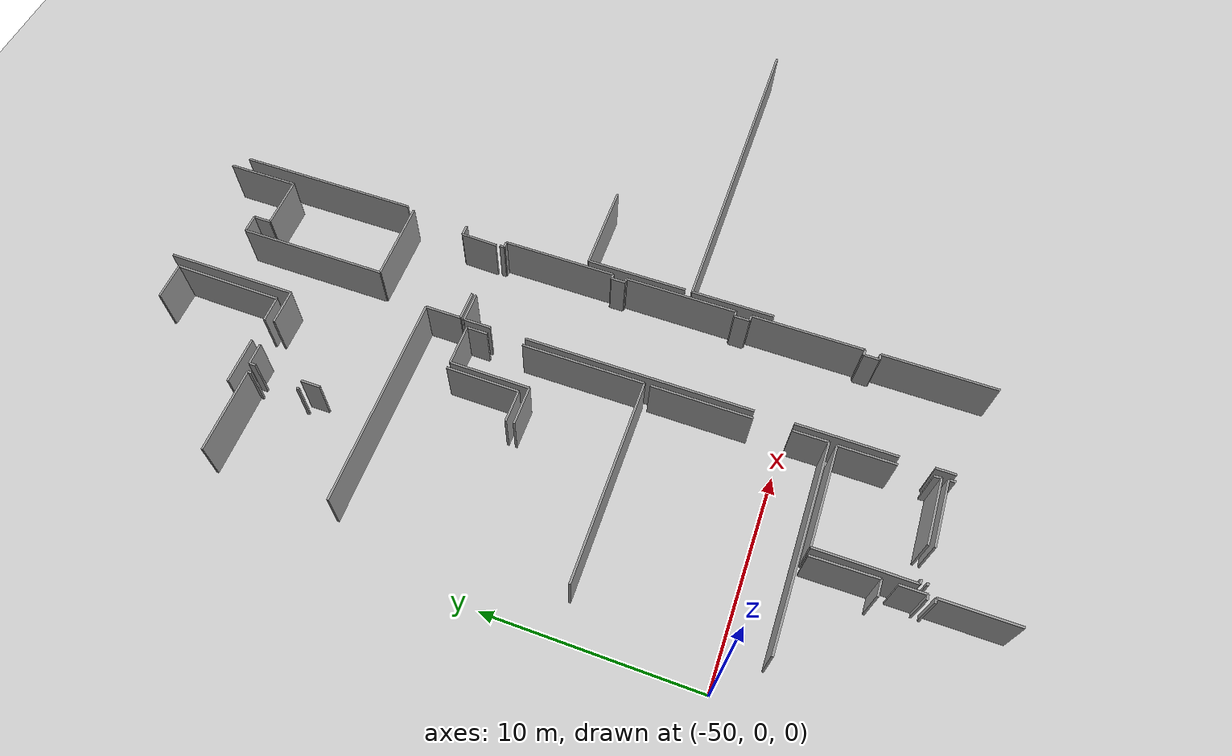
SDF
<sdf version="1.6">
 <world name="default">
  <model name="ground_plane">
   <static>1</static>
   <link name="link">
    <collision name="collision">
     <geometry><plane><normal>0 0 1</normal><size>100 100</size></plane></geometry>
     <surface><friction><ode><mu>100</mu><mu2>50</mu2></ode></friction></surface>
    </collision>
    <visual name="visual">
     <cast_shadows>0</cast_shadows>
     <geometry><plane><normal>0 0 1</normal><size>100 100</size></plane></geometry>
     <material>
      <script><uri>file://media/materials/scripts/gazebo.material</uri><name>Gazebo/Grey</name></script>
     </material>
    </visual>
   </link>
  </model>
  <model name="50010535_PLAN2">
   <static>1</static>
   <link name="Wall_122">
    <collision name="Wall_122_Collision">
     <geometry><box><size>1.39489082165 0.1 2.5</size></box></geometry>
     <pose>0.697445410824 0 1.25 0 0 0</pose>
    </collision>
    <visual name="Wall_122_Visual">
     <pose>0.697445410824 0 1.25 0 0 0</pose>
     <geometry><box><size>1.39489082165 0.1 2.5</size></box></geometry>
     <material>
      <script><uri>file://media/materials/scripts/gazebo.material</uri><name>Gazebo/Grey</name></script>
      <ambient>1 1 1 1</ambient>
     </material>
    </visual>
    <pose>65.727870498 -14.2251164209 0 0 0 3.14159265359</pose>
   </link>
   <link name="Wall_123">
    <collision name="Wall_123_Collision">
     <geometry><box><size>1.72881075964 0.1 2.5</size></box></geometry>
     <pose>0.864405379821 0 1.25 0 0 0</pose>
    </collision>
    <visual name="Wall_123_Visual">
     <pose>0.864405379821 0 1.25 0 0 0</pose>
     <geometry><box><size>1.72881075964 0.1 2.5</size></box></geometry>
     <material>
      <script><uri>file://media/materials/scripts/gazebo.material</uri><name>Gazebo/Grey</name></script>
      <ambient>1 1 1 1</ambient>
     </material>
    </visual>
    <pose>64.3329796764 -14.2251164209 0 0 0 1.57079632679</pose>
   </link>
   <link name="Wall_124">
    <collision name="Wall_124_Collision">
     <geometry><box><size>10.1380532773 0.1 2.5</size></box></geometry>
     <pose>5.06902663863 0 1.25 0 0 0</pose>
    </collision>
    <visual name="Wall_124_Visual">
     <pose>5.06902663863 0 1.25 0 0 0</pose>
     <geometry><box><size>10.1380532773 0.1 2.5</size></box></geometry>
     <material>
      <script><uri>file://media/materials/scripts/gazebo.material</uri><name>Gazebo/Grey</name></script>
      <ambient>1 1 1 1</ambient>
     </material>
    </visual>
    <pose>64.3329796764 -12.4963056613 0 0 0 3.14159265359</pose>
   </link>
   <link name="Wall_126">
    <collision name="Wall_126_Collision">
     <geometry><box><size>0.931875504279 0.1 2.5</size></box></geometry>
     <pose>0.465937752139 0 1.25 0 0 0</pose>
    </collision>
    <visual name="Wall_126_Visual">
     <pose>0.465937752139 0 1.25 0 0 0</pose>
     <geometry><box><size>0.931875504279 0.1 2.5</size></box></geometry>
     <material>
      <script><uri>file://media/materials/scripts/gazebo.material</uri><name>Gazebo/Grey</name></script>
      <ambient>1 1 1 1</ambient>
     </material>
    </visual>
    <pose>58.8893731377 -9.77996607434 0 0 0 1.57079632679</pose>
   </link>
   <link name="Wall_127">
    <collision name="Wall_127_Collision">
     <geometry><box><size>0.319663538814 0.1 2.5</size></box></geometry>
     <pose>0.159831769407 0 1.25 0 0 0</pose>
    </collision>
    <visual name="Wall_127_Visual">
     <pose>0.159831769407 0 1.25 0 0 0</pose>
     <geometry><box><size>0.319663538814 0.1 2.5</size></box></geometry>
     <material>
      <script><uri>file://media/materials/scripts/gazebo.material</uri><name>Gazebo/Grey</name></script>
      <ambient>1 1 1 1</ambient>
     </material>
    </visual>
    <pose>58.8893731377 -6.58261913687 0 0 0 1.57079632679</pose>
   </link>
   <link name="Wall_128">
    <collision name="Wall_128_Collision">
     <geometry><box><size>1.02640991595 0.1 2.5</size></box></geometry>
     <pose>0.513204957974 0 1.25 0 0 0</pose>
    </collision>
    <visual name="Wall_128_Visual">
     <pose>0.513204957974 0 1.25 0 0 0</pose>
     <geometry><box><size>1.02640991595 0.1 2.5</size></box></geometry>
     <material>
      <script><uri>file://media/materials/scripts/gazebo.material</uri><name>Gazebo/Grey</name></script>
      <ambient>1 1 1 1</ambient>
     </material>
    </visual>
    <pose>58.8893731377 -6.26295559805 0 0 0 0.0</pose>
   </link>
   <link name="Wall_129">
    <collision name="Wall_129_Collision">
     <geometry><box><size>1.68738842335 0.1 2.5</size></box></geometry>
     <pose>0.843694211673 0 1.25 0 0 0</pose>
    </collision>
    <visual name="Wall_129_Visual">
     <pose>0.843694211673 0 1.25 0 0 0</pose>
     <geometry><box><size>1.68738842335 0.1 2.5</size></box></geometry>
     <material>
      <script><uri>file://media/materials/scripts/gazebo.material</uri><name>Gazebo/Grey</name></script>
      <ambient>1 1 1 1</ambient>
     </material>
    </visual>
    <pose>61.2069909722 -6.26295559805 0 0 0 0.0</pose>
   </link>
   <link name="Wall_130">
    <collision name="Wall_130_Collision">
     <geometry><box><size>6.26295559805 0.1 2.5</size></box></geometry>
     <pose>3.13147779903 0 1.25 0 0 0</pose>
    </collision>
    <visual name="Wall_130_Visual">
     <pose>3.13147779903 0 1.25 0 0 0</pose>
     <geometry><box><size>6.26295559805 0.1 2.5</size></box></geometry>
     <material>
      <script><uri>file://media/materials/scripts/gazebo.material</uri><name>Gazebo/Grey</name></script>
      <ambient>1 1 1 1</ambient>
     </material>
    </visual>
    <pose>62.8943793956 -6.26295559805 0 0 0 1.57079632679</pose>
   </link>
   <link name="Wall_131">
    <collision name="Wall_131_Collision">
     <geometry><box><size>3.40252727076 0.1 2.5</size></box></geometry>
     <pose>1.70126363538 0 1.25 0 0 0</pose>
    </collision>
    <visual name="Wall_131_Visual">
     <pose>1.70126363538 0 1.25 0 0 0</pose>
     <geometry><box><size>3.40252727076 0.1 2.5</size></box></geometry>
     <material>
      <script><uri>file://media/materials/scripts/gazebo.material</uri><name>Gazebo/Grey</name></script>
      <ambient>1 1 1 1</ambient>
     </material>
    </visual>
    <pose>68.6894404808 -0.0 0 0 0 -1.57079632679</pose>
   </link>
   <link name="Wall_132">
    <collision name="Wall_132_Collision">
     <geometry><box><size>2.46983856724 0.1 2.5</size></box></geometry>
     <pose>1.23491928362 0 1.25 0 0 0</pose>
    </collision>
    <visual name="Wall_132_Visual">
     <pose>1.23491928362 0 1.25 0 0 0</pose>
     <geometry><box><size>2.46983856724 0.1 2.5</size></box></geometry>
     <material>
      <script><uri>file://media/materials/scripts/gazebo.material</uri><name>Gazebo/Grey</name></script>
      <ambient>1 1 1 1</ambient>
     </material>
    </visual>
    <pose>68.6894404808 -3.40252727076 0 0 0 3.14159265359</pose>
   </link>
   <link name="Wall_133">
    <collision name="Wall_133_Collision">
     <geometry><box><size>0.848980006734 0.1 2.5</size></box></geometry>
     <pose>0.424490003367 0 1.25 0 0 0</pose>
    </collision>
    <visual name="Wall_133_Visual">
     <pose>0.424490003367 0 1.25 0 0 0</pose>
     <geometry><box><size>0.848980006734 0.1 2.5</size></box></geometry>
     <material>
      <script><uri>file://media/materials/scripts/gazebo.material</uri><name>Gazebo/Grey</name></script>
      <ambient>1 1 1 1</ambient>
     </material>
    </visual>
    <pose>66.2196019136 -3.40252727076 0 0 0 1.57079632679</pose>
   </link>
   <link name="Wall_134">
    <collision name="Wall_134_Collision">
     <geometry><box><size>0.868852563166 0.1 2.5</size></box></geometry>
     <pose>0.434426281583 0 1.25 0 0 0</pose>
    </collision>
    <visual name="Wall_134_Visual">
     <pose>0.434426281583 0 1.25 0 0 0</pose>
     <geometry><box><size>0.868852563166 0.1 2.5</size></box></geometry>
     <material>
      <script><uri>file://media/materials/scripts/gazebo.material</uri><name>Gazebo/Grey</name></script>
      <ambient>1 1 1 1</ambient>
     </material>
    </visual>
    <pose>66.2196019136 -2.55354726403 0 0 0 3.14159265359</pose>
   </link>
   <link name="Wall_135">
    <collision name="Wall_135_Collision">
     <geometry><box><size>7.12654777863 0.1 2.5</size></box></geometry>
     <pose>3.56327388932 0 1.25 0 0 0</pose>
    </collision>
    <visual name="Wall_135_Visual">
     <pose>3.56327388932 0 1.25 0 0 0</pose>
     <geometry><box><size>7.12654777863 0.1 2.5</size></box></geometry>
     <material>
      <script><uri>file://media/materials/scripts/gazebo.material</uri><name>Gazebo/Grey</name></script>
      <ambient>1 1 1 1</ambient>
     </material>
    </visual>
    <pose>65.3507493504 -2.55354726403 0 0 0 -1.57079632679</pose>
   </link>
   <link name="Wall_136">
    <collision name="Wall_136_Collision">
     <geometry><box><size>3.87057425843 0.1 2.5</size></box></geometry>
     <pose>1.93528712922 0 1.25 0 0 0</pose>
    </collision>
    <visual name="Wall_136_Visual">
     <pose>1.93528712922 0 1.25 0 0 0</pose>
     <geometry><box><size>3.87057425843 0.1 2.5</size></box></geometry>
     <material>
      <script><uri>file://media/materials/scripts/gazebo.material</uri><name>Gazebo/Grey</name></script>
      <ambient>1 1 1 1</ambient>
     </material>
    </visual>
    <pose>65.3507493504 -9.68009504266 0 0 0 0.0</pose>
   </link>
   <link name="Wall_137">
    <collision name="Wall_137_Collision">
     <geometry><box><size>0.500371657465 0.1 2.5</size></box></geometry>
     <pose>0.250185828733 0 1.25 0 0 0</pose>
    </collision>
    <visual name="Wall_137_Visual">
     <pose>0.250185828733 0 1.25 0 0 0</pose>
     <geometry><box><size>0.500371657465 0.1 2.5</size></box></geometry>
     <material>
      <script><uri>file://media/materials/scripts/gazebo.material</uri><name>Gazebo/Grey</name></script>
      <ambient>1 1 1 1</ambient>
     </material>
    </visual>
    <pose>69.2213236088 -12.481566425 0 0 0 3.14159265359</pose>
   </link>
   <link name="Wall_138">
    <collision name="Wall_138_Collision">
     <geometry><box><size>1.7440977911 0.1 2.5</size></box></geometry>
     <pose>0.87204889555 0 1.25 0 0 0</pose>
    </collision>
    <visual name="Wall_138_Visual">
     <pose>0.87204889555 0 1.25 0 0 0</pose>
     <geometry><box><size>1.7440977911 0.1 2.5</size></box></geometry>
     <material>
      <script><uri>file://media/materials/scripts/gazebo.material</uri><name>Gazebo/Grey</name></script>
      <ambient>1 1 1 1</ambient>
     </material>
    </visual>
    <pose>68.7209519514 -12.481566425 0 0 0 -1.59586030894</pose>
   </link>
   <link name="Wall_139">
    <collision name="Wall_139_Collision">
     <geometry><box><size>0.126300006988 0.1 2.5</size></box></geometry>
     <pose>0.0631500034942 0 1.25 0 0 0</pose>
    </collision>
    <visual name="Wall_139_Visual">
     <pose>0.0631500034942 0 1.25 0 0 0</pose>
     <geometry><box><size>0.126300006988 0.1 2.5</size></box></geometry>
     <material>
      <script><uri>file://media/materials/scripts/gazebo.material</uri><name>Gazebo/Grey</name></script>
      <ambient>1 1 1 1</ambient>
     </material>
    </visual>
    <pose>58.4850606405 -8.96168433893 0 0 0 1.57079632679</pose>
   </link>
   <link name="Wall_140">
    <collision name="Wall_140_Collision">
     <geometry><box><size>0.188890936005 0.1 2.5</size></box></geometry>
     <pose>0.0944454680025 0 1.25 0 0 0</pose>
    </collision>
    <visual name="Wall_140_Visual">
     <pose>0.0944454680025 0 1.25 0 0 0</pose>
     <geometry><box><size>0.188890936005 0.1 2.5</size></box></geometry>
     <material>
      <script><uri>file://media/materials/scripts/gazebo.material</uri><name>Gazebo/Grey</name></script>
      <ambient>1 1 1 1</ambient>
     </material>
    </visual>
    <pose>58.4850606405 -6.59715507328 0 0 0 1.57079632679</pose>
   </link>
   <link name="Wall_141">
    <collision name="Wall_141_Collision">
     <geometry><box><size>4.04515797031 0.1 2.5</size></box></geometry>
     <pose>2.02257898515 0 1.25 0 0 0</pose>
    </collision>
    <visual name="Wall_141_Visual">
     <pose>2.02257898515 0 1.25 0 0 0</pose>
     <geometry><box><size>4.04515797031 0.1 2.5</size></box></geometry>
     <material>
      <script><uri>file://media/materials/scripts/gazebo.material</uri><name>Gazebo/Grey</name></script>
      <ambient>1 1 1 1</ambient>
     </material>
    </visual>
    <pose>58.4850606405 -6.40826413728 0 0 0 3.14159265359</pose>
   </link>
   <link name="Wall_144">
    <collision name="Wall_144_Collision">
     <geometry><box><size>1.22996385075 0.1 2.5</size></box></geometry>
     <pose>0.614981925376 0 1.25 0 0 0</pose>
    </collision>
    <visual name="Wall_144_Visual">
     <pose>0.614981925376 0 1.25 0 0 0</pose>
     <geometry><box><size>1.22996385075 0.1 2.5</size></box></geometry>
     <material>
      <script><uri>file://media/materials/scripts/gazebo.material</uri><name>Gazebo/Grey</name></script>
      <ambient>1 1 1 1</ambient>
     </material>
    </visual>
    <pose>62.3807932504 -5.79844094458 0 0 0 3.14159265359</pose>
   </link>
   <link name="Wall_145">
    <collision name="Wall_145_Collision">
     <geometry><box><size>2.22232104852 0.1 2.5</size></box></geometry>
     <pose>1.11116052426 0 1.25 0 0 0</pose>
    </collision>
    <visual name="Wall_145_Visual">
     <pose>1.11116052426 0 1.25 0 0 0</pose>
     <geometry><box><size>2.22232104852 0.1 2.5</size></box></geometry>
     <material>
      <script><uri>file://media/materials/scripts/gazebo.material</uri><name>Gazebo/Grey</name></script>
      <ambient>1 1 1 1</ambient>
     </material>
    </visual>
    <pose>59.987192112 -5.79844094458 0 0 0 3.14159265359</pose>
   </link>
   <link name="Wall_150">
    <collision name="Wall_150_Collision">
     <geometry><box><size>1.78141458549 0.1 2.5</size></box></geometry>
     <pose>0.890707292745 0 1.25 0 0 0</pose>
    </collision>
    <visual name="Wall_150_Visual">
     <pose>0.890707292745 0 1.25 0 0 0</pose>
     <geometry><box><size>1.78141458549 0.1 2.5</size></box></geometry>
     <material>
      <script><uri>file://media/materials/scripts/gazebo.material</uri><name>Gazebo/Grey</name></script>
      <ambient>1 1 1 1</ambient>
     </material>
    </visual>
    <pose>60.6456293717 -0.610306029745 0 0 0 0.0</pose>
   </link>
   <link name="Wall_151">
    <collision name="Wall_151_Collision">
     <geometry><box><size>5.18834106651 0.1 2.5</size></box></geometry>
     <pose>2.59417053325 0 1.25 0 0 0</pose>
    </collision>
    <visual name="Wall_151_Visual">
     <pose>2.59417053325 0 1.25 0 0 0</pose>
     <geometry><box><size>5.18834106651 0.1 2.5</size></box></geometry>
     <material>
      <script><uri>file://media/materials/scripts/gazebo.material</uri><name>Gazebo/Grey</name></script>
      <ambient>1 1 1 1</ambient>
     </material>
    </visual>
    <pose>62.4270439572 -0.610306029745 0 0 0 -1.57971079845</pose>
   </link>
   <link name="Wall_197">
    <collision name="Wall_197_Collision">
     <geometry><box><size>8.73304829006 0.1 2.5</size></box></geometry>
     <pose>4.36652414503 0 1.25 0 0 0</pose>
    </collision>
    <visual name="Wall_197_Visual">
     <pose>4.36652414503 0 1.25 0 0 0</pose>
     <geometry><box><size>8.73304829006 0.1 2.5</size></box></geometry>
     <material>
      <script><uri>file://media/materials/scripts/gazebo.material</uri><name>Gazebo/Grey</name></script>
      <ambient>1 1 1 1</ambient>
     </material>
    </visual>
    <pose>69.3481318653 -9.31491775887 0 0 0 1.57079632679</pose>
   </link>
   <link name="Wall_300">
    <collision name="Wall_300_Collision">
     <geometry><box><size>4.77068416739 0.1 2.5</size></box></geometry>
     <pose>2.3853420837 0 1.25 0 0 0</pose>
    </collision>
    <visual name="Wall_300_Visual">
     <pose>2.3853420837 0 1.25 0 0 0</pose>
     <geometry><box><size>4.77068416739 0.1 2.5</size></box></geometry>
     <material>
      <script><uri>file://media/materials/scripts/gazebo.material</uri><name>Gazebo/Grey</name></script>
      <ambient>1 1 1 1</ambient>
     </material>
    </visual>
    <pose>69.3311055062 -23.4805943978 0 0 0 1.57079632679</pose>
   </link>
   <link name="Wall_301">
    <collision name="Wall_301_Collision">
     <geometry><box><size>4.24718715653 0.1 2.5</size></box></geometry>
     <pose>2.12359357827 0 1.25 0 0 0</pose>
    </collision>
    <visual name="Wall_301_Visual">
     <pose>2.12359357827 0 1.25 0 0 0</pose>
     <geometry><box><size>4.24718715653 0.1 2.5</size></box></geometry>
     <material>
      <script><uri>file://media/materials/scripts/gazebo.material</uri><name>Gazebo/Grey</name></script>
      <ambient>1 1 1 1</ambient>
     </material>
    </visual>
    <pose>69.3311055062 -18.7099102304 0 0 0 0.0</pose>
   </link>
   <link name="Wall_307">
    <collision name="Wall_307_Collision">
     <geometry><box><size>3.93105595192 0.1 2.5</size></box></geometry>
     <pose>1.96552797596 0 1.25 0 0 0</pose>
    </collision>
    <visual name="Wall_307_Visual">
     <pose>1.96552797596 0 1.25 0 0 0</pose>
     <geometry><box><size>3.93105595192 0.1 2.5</size></box></geometry>
     <material>
      <script><uri>file://media/materials/scripts/gazebo.material</uri><name>Gazebo/Grey</name></script>
      <ambient>1 1 1 1</ambient>
     </material>
    </visual>
    <pose>69.3255147615 -27.7509069077 0 0 0 1.57079632679</pose>
   </link>
   <link name="Wall_308">
    <collision name="Wall_308_Collision">
     <geometry><box><size>15.8436624461 0.1 2.5</size></box></geometry>
     <pose>7.92183122304 0 1.25 0 0 0</pose>
    </collision>
    <visual name="Wall_308_Visual">
     <pose>7.92183122304 0 1.25 0 0 0</pose>
     <geometry><box><size>15.8436624461 0.1 2.5</size></box></geometry>
     <material>
      <script><uri>file://media/materials/scripts/gazebo.material</uri><name>Gazebo/Grey</name></script>
      <ambient>1 1 1 1</ambient>
     </material>
    </visual>
    <pose>69.3255147615 -23.8198509558 0 0 0 0.0</pose>
   </link>
   <link name="Wall_743">
    <collision name="Wall_743_Collision">
     <geometry><box><size>0.915357394713 0.1 2.5</size></box></geometry>
     <pose>0.457678697356 0 1.25 0 0 0</pose>
    </collision>
    <visual name="Wall_743_Visual">
     <pose>0.457678697356 0 1.25 0 0 0</pose>
     <geometry><box><size>0.915357394713 0.1 2.5</size></box></geometry>
     <material>
      <script><uri>file://media/materials/scripts/gazebo.material</uri><name>Gazebo/Grey</name></script>
      <ambient>1 1 1 1</ambient>
     </material>
    </visual>
    <pose>64.309854323 -36.9786852855 0 0 0 1.57079632679</pose>
   </link>
   <link name="Wall_744">
    <collision name="Wall_744_Collision">
     <geometry><box><size>4.59508395647 0.1 2.5</size></box></geometry>
     <pose>2.29754197823 0 1.25 0 0 0</pose>
    </collision>
    <visual name="Wall_744_Visual">
     <pose>2.29754197823 0 1.25 0 0 0</pose>
     <geometry><box><size>4.59508395647 0.1 2.5</size></box></geometry>
     <material>
      <script><uri>file://media/materials/scripts/gazebo.material</uri><name>Gazebo/Grey</name></script>
      <ambient>1 1 1 1</ambient>
     </material>
    </visual>
    <pose>64.309854323 -34.5347674441 0 0 0 1.57079632679</pose>
   </link>
   <link name="Wall_745">
    <collision name="Wall_745_Collision">
     <geometry><box><size>10.730163974 0.1 2.5</size></box></geometry>
     <pose>5.365081987 0 1.25 0 0 0</pose>
    </collision>
    <visual name="Wall_745_Visual">
     <pose>5.365081987 0 1.25 0 0 0</pose>
     <geometry><box><size>10.730163974 0.1 2.5</size></box></geometry>
     <material>
      <script><uri>file://media/materials/scripts/gazebo.material</uri><name>Gazebo/Grey</name></script>
      <ambient>1 1 1 1</ambient>
     </material>
    </visual>
    <pose>64.309854323 -28.1519157831 0 0 0 1.57079632679</pose>
   </link>
   <link name="Wall_746">
    <collision name="Wall_746_Collision">
     <geometry><box><size>1.29298679187 0.1 2.5</size></box></geometry>
     <pose>0.646493395933 0 1.25 0 0 0</pose>
    </collision>
    <visual name="Wall_746_Visual">
     <pose>0.646493395933 0 1.25 0 0 0</pose>
     <geometry><box><size>1.29298679187 0.1 2.5</size></box></geometry>
     <material>
      <script><uri>file://media/materials/scripts/gazebo.material</uri><name>Gazebo/Grey</name></script>
      <ambient>1 1 1 1</ambient>
     </material>
    </visual>
    <pose>64.309854323 -15.7071720361 0 0 0 1.57079632679</pose>
   </link>
   <link name="Wall_747">
    <collision name="Wall_747_Collision">
     <geometry><box><size>1.40327693881 0.1 2.5</size></box></geometry>
     <pose>0.701638469407 0 1.25 0 0 0</pose>
    </collision>
    <visual name="Wall_747_Visual">
     <pose>0.701638469407 0 1.25 0 0 0</pose>
     <geometry><box><size>1.40327693881 0.1 2.5</size></box></geometry>
     <material>
      <script><uri>file://media/materials/scripts/gazebo.material</uri><name>Gazebo/Grey</name></script>
      <ambient>1 1 1 1</ambient>
     </material>
    </visual>
    <pose>64.309854323 -14.4141852442 0 0 0 0.0</pose>
   </link>
   <link name="Wall_748">
    <collision name="Wall_748_Collision">
     <geometry><box><size>0.227187537722 0.1 2.5</size></box></geometry>
     <pose>0.113593768861 0 1.25 0 0 0</pose>
    </collision>
    <visual name="Wall_748_Visual">
     <pose>0.113593768861 0 1.25 0 0 0</pose>
     <geometry><box><size>0.227187537722 0.1 2.5</size></box></geometry>
     <material>
      <script><uri>file://media/materials/scripts/gazebo.material</uri><name>Gazebo/Grey</name></script>
      <ambient>1 1 1 1</ambient>
     </material>
    </visual>
    <pose>68.7074833389 -14.4141852442 0 0 0 -1.57079632679</pose>
   </link>
   <link name="Wall_749">
    <collision name="Wall_749_Collision">
     <geometry><box><size>0.287160981684 0.1 2.5</size></box></geometry>
     <pose>0.143580490842 0 1.25 0 0 0</pose>
    </collision>
    <visual name="Wall_749_Visual">
     <pose>0.143580490842 0 1.25 0 0 0</pose>
     <geometry><box><size>0.287160981684 0.1 2.5</size></box></geometry>
     <material>
      <script><uri>file://media/materials/scripts/gazebo.material</uri><name>Gazebo/Grey</name></script>
      <ambient>1 1 1 1</ambient>
     </material>
    </visual>
    <pose>68.7074833389 -14.641372782 0 0 0 0.0</pose>
   </link>
   <link name="Wall_750">
    <collision name="Wall_750_Collision">
     <geometry><box><size>5.4065043233 0.1 2.5</size></box></geometry>
     <pose>2.70325216165 0 1.25 0 0 0</pose>
    </collision>
    <visual name="Wall_750_Visual">
     <pose>2.70325216165 0 1.25 0 0 0</pose>
     <geometry><box><size>5.4065043233 0.1 2.5</size></box></geometry>
     <material>
      <script><uri>file://media/materials/scripts/gazebo.material</uri><name>Gazebo/Grey</name></script>
      <ambient>1 1 1 1</ambient>
     </material>
    </visual>
    <pose>68.9946443206 -14.641372782 0 0 0 -1.57079632679</pose>
   </link>
   <link name="Wall_751">
    <collision name="Wall_751_Collision">
     <geometry><box><size>0.235319530123 0.1 2.5</size></box></geometry>
     <pose>0.117659765062 0 1.25 0 0 0</pose>
    </collision>
    <visual name="Wall_751_Visual">
     <pose>0.117659765062 0 1.25 0 0 0</pose>
     <geometry><box><size>0.235319530123 0.1 2.5</size></box></geometry>
     <material>
      <script><uri>file://media/materials/scripts/gazebo.material</uri><name>Gazebo/Grey</name></script>
      <ambient>1 1 1 1</ambient>
     </material>
    </visual>
    <pose>68.9946443206 -20.0478771053 0 0 0 3.14159265359</pose>
   </link>
   <link name="Wall_752">
    <collision name="Wall_752_Collision">
     <geometry><box><size>0.668348125512 0.1 2.5</size></box></geometry>
     <pose>0.334174062756 0 1.25 0 0 0</pose>
    </collision>
    <visual name="Wall_752_Visual">
     <pose>0.334174062756 0 1.25 0 0 0</pose>
     <geometry><box><size>0.668348125512 0.1 2.5</size></box></geometry>
     <material>
      <script><uri>file://media/materials/scripts/gazebo.material</uri><name>Gazebo/Grey</name></script>
      <ambient>1 1 1 1</ambient>
     </material>
    </visual>
    <pose>68.7593247905 -20.0478771053 0 0 0 -1.57079632679</pose>
   </link>
   <link name="Wall_753">
    <collision name="Wall_753_Collision">
     <geometry><box><size>0.217276671982 0.1 2.5</size></box></geometry>
     <pose>0.108638335991 0 1.25 0 0 0</pose>
    </collision>
    <visual name="Wall_753_Visual">
     <pose>0.108638335991 0 1.25 0 0 0</pose>
     <geometry><box><size>0.217276671982 0.1 2.5</size></box></geometry>
     <material>
      <script><uri>file://media/materials/scripts/gazebo.material</uri><name>Gazebo/Grey</name></script>
      <ambient>1 1 1 1</ambient>
     </material>
    </visual>
    <pose>68.7593247905 -20.7162252308 0 0 0 0.0</pose>
   </link>
   <link name="Wall_754">
    <collision name="Wall_754_Collision">
     <geometry><box><size>5.31476528402 0.1 2.5</size></box></geometry>
     <pose>2.65738264201 0 1.25 0 0 0</pose>
    </collision>
    <visual name="Wall_754_Visual">
     <pose>2.65738264201 0 1.25 0 0 0</pose>
     <geometry><box><size>5.31476528402 0.1 2.5</size></box></geometry>
     <material>
      <script><uri>file://media/materials/scripts/gazebo.material</uri><name>Gazebo/Grey</name></script>
      <ambient>1 1 1 1</ambient>
     </material>
    </visual>
    <pose>68.9766014625 -20.7162252308 0 0 0 -1.57079632679</pose>
   </link>
   <link name="Wall_755">
    <collision name="Wall_755_Collision">
     <geometry><box><size>0.257682509228 0.1 2.5</size></box></geometry>
     <pose>0.128841254614 0 1.25 0 0 0</pose>
    </collision>
    <visual name="Wall_755_Visual">
     <pose>0.128841254614 0 1.25 0 0 0</pose>
     <geometry><box><size>0.257682509228 0.1 2.5</size></box></geometry>
     <material>
      <script><uri>file://media/materials/scripts/gazebo.material</uri><name>Gazebo/Grey</name></script>
      <ambient>1 1 1 1</ambient>
     </material>
    </visual>
    <pose>68.9766014625 -26.0309905148 0 0 0 3.14159265359</pose>
   </link>
   <link name="Wall_756">
    <collision name="Wall_756_Collision">
     <geometry><box><size>0.720189577073 0.1 2.5</size></box></geometry>
     <pose>0.360094788536 0 1.25 0 0 0</pose>
    </collision>
    <visual name="Wall_756_Visual">
     <pose>0.360094788536 0 1.25 0 0 0</pose>
     <geometry><box><size>0.720189577073 0.1 2.5</size></box></geometry>
     <material>
      <script><uri>file://media/materials/scripts/gazebo.material</uri><name>Gazebo/Grey</name></script>
      <ambient>1 1 1 1</ambient>
     </material>
    </visual>
    <pose>68.7189189533 -26.0309905148 0 0 0 -1.57079632679</pose>
   </link>
   <link name="Wall_757">
    <collision name="Wall_757_Collision">
     <geometry><box><size>0.278012490232 0.1 2.5</size></box></geometry>
     <pose>0.139006245116 0 1.25 0 0 0</pose>
    </collision>
    <visual name="Wall_757_Visual">
     <pose>0.139006245116 0 1.25 0 0 0</pose>
     <geometry><box><size>0.278012490232 0.1 2.5</size></box></geometry>
     <material>
      <script><uri>file://media/materials/scripts/gazebo.material</uri><name>Gazebo/Grey</name></script>
      <ambient>1 1 1 1</ambient>
     </material>
    </visual>
    <pose>68.7189189533 -26.7511800919 0 0 0 0.0</pose>
   </link>
   <link name="Wall_758">
    <collision name="Wall_758_Collision">
     <geometry><box><size>5.29392705349 0.1 2.5</size></box></geometry>
     <pose>2.64696352674 0 1.25 0 0 0</pose>
    </collision>
    <visual name="Wall_758_Visual">
     <pose>2.64696352674 0 1.25 0 0 0</pose>
     <geometry><box><size>5.29392705349 0.1 2.5</size></box></geometry>
     <material>
      <script><uri>file://media/materials/scripts/gazebo.material</uri><name>Gazebo/Grey</name></script>
      <ambient>1 1 1 1</ambient>
     </material>
    </visual>
    <pose>68.9969314435 -26.7511800919 0 0 0 -1.57079632679</pose>
   </link>
   <link name="Wall_759">
    <collision name="Wall_759_Collision">
     <geometry><box><size>0.270896996881 0.1 2.5</size></box></geometry>
     <pose>0.13544849844 0 1.25 0 0 0</pose>
    </collision>
    <visual name="Wall_759_Visual">
     <pose>0.13544849844 0 1.25 0 0 0</pose>
     <geometry><box><size>0.270896996881 0.1 2.5</size></box></geometry>
     <material>
      <script><uri>file://media/materials/scripts/gazebo.material</uri><name>Gazebo/Grey</name></script>
      <ambient>1 1 1 1</ambient>
     </material>
    </visual>
    <pose>68.9969314435 -32.0451071454 0 0 0 3.14159265359</pose>
   </link>
   <link name="Wall_760">
    <collision name="Wall_760_Collision">
     <geometry><box><size>0.718410703735 0.1 2.5</size></box></geometry>
     <pose>0.359205351868 0 1.25 0 0 0</pose>
    </collision>
    <visual name="Wall_760_Visual">
     <pose>0.359205351868 0 1.25 0 0 0</pose>
     <geometry><box><size>0.718410703735 0.1 2.5</size></box></geometry>
     <material>
      <script><uri>file://media/materials/scripts/gazebo.material</uri><name>Gazebo/Grey</name></script>
      <ambient>1 1 1 1</ambient>
     </material>
    </visual>
    <pose>68.7260344466 -32.0451071454 0 0 0 -1.57079632679</pose>
   </link>
   <link name="Wall_761">
    <collision name="Wall_761_Collision">
     <geometry><box><size>0.284111484533 0.1 2.5</size></box></geometry>
     <pose>0.142055742267 0 1.25 0 0 0</pose>
    </collision>
    <visual name="Wall_761_Visual">
     <pose>0.142055742267 0 1.25 0 0 0</pose>
     <geometry><box><size>0.284111484533 0.1 2.5</size></box></geometry>
     <material>
      <script><uri>file://media/materials/scripts/gazebo.material</uri><name>Gazebo/Grey</name></script>
      <ambient>1 1 1 1</ambient>
     </material>
    </visual>
    <pose>68.7260344466 -32.7635178491 0 0 0 0.0</pose>
   </link>
   <link name="Wall_762">
    <collision name="Wall_762_Collision">
     <geometry><box><size>5.31578178307 0.1 2.5</size></box></geometry>
     <pose>2.65789089153 0 1.25 0 0 0</pose>
    </collision>
    <visual name="Wall_762_Visual">
     <pose>2.65789089153 0 1.25 0 0 0</pose>
     <geometry><box><size>5.31578178307 0.1 2.5</size></box></geometry>
     <material>
      <script><uri>file://media/materials/scripts/gazebo.material</uri><name>Gazebo/Grey</name></script>
      <ambient>1 1 1 1</ambient>
     </material>
    </visual>
    <pose>69.0101459311 -32.7635178491 0 0 0 -1.57079632679</pose>
   </link>
   <link name="Wall_767">
    <collision name="Wall_767_Collision">
     <geometry><box><size>9.70578705616 0.1 2.5</size></box></geometry>
     <pose>4.85289352808 0 1.25 0 0 0</pose>
    </collision>
    <visual name="Wall_767_Visual">
     <pose>4.85289352808 0 1.25 0 0 0</pose>
     <geometry><box><size>9.70578705616 0.1 2.5</size></box></geometry>
     <material>
      <script><uri>file://media/materials/scripts/gazebo.material</uri><name>Gazebo/Grey</name></script>
      <ambient>1 1 1 1</ambient>
     </material>
    </visual>
    <pose>63.9784756326 -23.2152881457 0 0 0 3.14159265359</pose>
   </link>
   <link name="Wall_771">
    <collision name="Wall_771_Collision">
     <geometry><box><size>1.85714376473 0.1 2.5</size></box></geometry>
     <pose>0.928571882366 0 1.25 0 0 0</pose>
    </collision>
    <visual name="Wall_771_Visual">
     <pose>0.928571882366 0 1.25 0 0 0</pose>
     <geometry><box><size>1.85714376473 0.1 2.5</size></box></geometry>
     <material>
      <script><uri>file://media/materials/scripts/gazebo.material</uri><name>Gazebo/Grey</name></script>
      <ambient>1 1 1 1</ambient>
     </material>
    </visual>
    <pose>60.1528814572 -18.5012738004 0 0 0 0.0</pose>
   </link>
   <link name="Wall_772">
    <collision name="Wall_772_Collision">
     <geometry><box><size>3.79840282587 0.1 2.5</size></box></geometry>
     <pose>1.89920141293 0 1.25 0 0 0</pose>
    </collision>
    <visual name="Wall_772_Visual">
     <pose>1.89920141293 0 1.25 0 0 0</pose>
     <geometry><box><size>3.79840282587 0.1 2.5</size></box></geometry>
     <material>
      <script><uri>file://media/materials/scripts/gazebo.material</uri><name>Gazebo/Grey</name></script>
      <ambient>1 1 1 1</ambient>
     </material>
    </visual>
    <pose>62.0100252219 -18.5012738004 0 0 0 1.57079632679</pose>
   </link>
   <link name="Wall_773">
    <collision name="Wall_773_Collision">
     <geometry><box><size>1.94659568115 0.1 2.5</size></box></geometry>
     <pose>0.973297840575 0 1.25 0 0 0</pose>
    </collision>
    <visual name="Wall_773_Visual">
     <pose>0.973297840575 0 1.25 0 0 0</pose>
     <geometry><box><size>1.94659568115 0.1 2.5</size></box></geometry>
     <material>
      <script><uri>file://media/materials/scripts/gazebo.material</uri><name>Gazebo/Grey</name></script>
      <ambient>1 1 1 1</ambient>
     </material>
    </visual>
    <pose>62.0100252219 -14.7028709745 0 0 0 0.0</pose>
   </link>
   <link name="Wall_774">
    <collision name="Wall_774_Collision">
     <geometry><box><size>1.00303043779 0.1 2.5</size></box></geometry>
     <pose>0.501515218897 0 1.25 0 0 0</pose>
    </collision>
    <visual name="Wall_774_Visual">
     <pose>0.501515218897 0 1.25 0 0 0</pose>
     <geometry><box><size>1.00303043779 0.1 2.5</size></box></geometry>
     <material>
      <script><uri>file://media/materials/scripts/gazebo.material</uri><name>Gazebo/Grey</name></script>
      <ambient>1 1 1 1</ambient>
     </material>
    </visual>
    <pose>63.956620903 -14.7028709745 0 0 0 -1.57079632679</pose>
   </link>
   <link name="Wall_775">
    <collision name="Wall_775_Collision">
     <geometry><box><size>5.79154457376 0.1 2.5</size></box></geometry>
     <pose>2.89577228688 0 1.25 0 0 0</pose>
    </collision>
    <visual name="Wall_775_Visual">
     <pose>2.89577228688 0 1.25 0 0 0</pose>
     <geometry><box><size>5.79154457376 0.1 2.5</size></box></geometry>
     <material>
      <script><uri>file://media/materials/scripts/gazebo.material</uri><name>Gazebo/Grey</name></script>
      <ambient>1 1 1 1</ambient>
     </material>
    </visual>
    <pose>63.956620903 -17.4237848072 0 0 0 -1.5670227598</pose>
   </link>
   <link name="Wall_780">
    <collision name="Wall_780_Collision">
     <geometry><box><size>1.55473529729 0.1 2.5</size></box></geometry>
     <pose>0.777367648647 0 1.25 0 0 0</pose>
    </collision>
    <visual name="Wall_780_Visual">
     <pose>0.777367648647 0 1.25 0 0 0</pose>
     <geometry><box><size>1.55473529729 0.1 2.5</size></box></geometry>
     <material>
      <script><uri>file://media/materials/scripts/gazebo.material</uri><name>Gazebo/Grey</name></script>
      <ambient>1 1 1 1</ambient>
     </material>
    </visual>
    <pose>61.6885573973 -18.1190701575 0 0 0 3.14159265359</pose>
   </link>
   <link name="Wall_784">
    <collision name="Wall_784_Collision">
     <geometry><box><size>3.45157102202 0.1 2.5</size></box></geometry>
     <pose>1.72578551101 0 1.25 0 0 0</pose>
    </collision>
    <visual name="Wall_784_Visual">
     <pose>1.72578551101 0 1.25 0 0 0</pose>
     <geometry><box><size>3.45157102202 0.1 2.5</size></box></geometry>
     <material>
      <script><uri>file://media/materials/scripts/gazebo.material</uri><name>Gazebo/Grey</name></script>
      <ambient>1 1 1 1</ambient>
     </material>
    </visual>
    <pose>61.7068543802 -14.6675476325 0 0 0 -1.57609741099</pose>
   </link>
   <link name="Wall_785">
    <collision name="Wall_785_Collision">
     <geometry><box><size>9.70578705616 0.1 2.5</size></box></geometry>
     <pose>4.85289352808 0 1.25 0 0 0</pose>
    </collision>
    <visual name="Wall_785_Visual">
     <pose>4.85289352808 0 1.25 0 0 0</pose>
     <geometry><box><size>9.70578705616 0.1 2.5</size></box></geometry>
     <material>
      <script><uri>file://media/materials/scripts/gazebo.material</uri><name>Gazebo/Grey</name></script>
      <ambient>1 1 1 1</ambient>
     </material>
    </visual>
    <pose>63.9695812659 -31.5592205994 0 0 0 3.14159265359</pose>
   </link>
   <link name="Wall_788">
    <collision name="Wall_788_Collision">
     <geometry><box><size>4.70689885199 0.1 2.5</size></box></geometry>
     <pose>2.353449426 0 1.25 0 0 0</pose>
    </collision>
    <visual name="Wall_788_Visual">
     <pose>2.353449426 0 1.25 0 0 0</pose>
     <geometry><box><size>4.70689885199 0.1 2.5</size></box></geometry>
     <material>
      <script><uri>file://media/materials/scripts/gazebo.material</uri><name>Gazebo/Grey</name></script>
      <ambient>1 1 1 1</ambient>
     </material>
    </visual>
    <pose>63.9550961545 -23.4950795093 0 0 0 -1.57079632679</pose>
   </link>
   <link name="Wall_789">
    <collision name="Wall_789_Collision">
     <geometry><box><size>1.64196398462 0.1 2.5</size></box></geometry>
     <pose>0.82098199231 0 1.25 0 0 0</pose>
    </collision>
    <visual name="Wall_789_Visual">
     <pose>0.82098199231 0 1.25 0 0 0</pose>
     <geometry><box><size>1.64196398462 0.1 2.5</size></box></geometry>
     <material>
      <script><uri>file://media/materials/scripts/gazebo.material</uri><name>Gazebo/Grey</name></script>
      <ambient>1 1 1 1</ambient>
     </material>
    </visual>
    <pose>63.9550961545 -29.9173205085 0 0 0 -1.56197439191</pose>
   </link>
   <link name="Wall_790">
    <collision name="Wall_790_Collision">
     <geometry><box><size>3.15114705565 0.1 2.5</size></box></geometry>
     <pose>1.57557352782 0 1.25 0 0 0</pose>
    </collision>
    <visual name="Wall_790_Visual">
     <pose>1.57557352782 0 1.25 0 0 0</pose>
     <geometry><box><size>3.15114705565 0.1 2.5</size></box></geometry>
     <material>
      <script><uri>file://media/materials/scripts/gazebo.material</uri><name>Gazebo/Grey</name></script>
      <ambient>1 1 1 1</ambient>
     </material>
    </visual>
    <pose>63.9550961545 -36.3975019536 0 0 0 3.14159265359</pose>
   </link>
   <link name="Wall_791">
    <collision name="Wall_791_Collision">
     <geometry><box><size>0.202029186229 0.1 2.5</size></box></geometry>
     <pose>0.101014593114 0 1.25 0 0 0</pose>
    </collision>
    <visual name="Wall_791_Visual">
     <pose>0.101014593114 0 1.25 0 0 0</pose>
     <geometry><box><size>0.202029186229 0.1 2.5</size></box></geometry>
     <material>
      <script><uri>file://media/materials/scripts/gazebo.material</uri><name>Gazebo/Grey</name></script>
      <ambient>1 1 1 1</ambient>
     </material>
    </visual>
    <pose>59.2809793968 -36.3975019536 0 0 0 3.14159265359</pose>
   </link>
   <link name="Wall_792">
    <collision name="Wall_792_Collision">
     <geometry><box><size>4.48428556 0.1 2.5</size></box></geometry>
     <pose>2.24214278 0 1.25 0 0 0</pose>
    </collision>
    <visual name="Wall_792_Visual">
     <pose>2.24214278 0 1.25 0 0 0</pose>
     <geometry><box><size>4.48428556 0.1 2.5</size></box></geometry>
     <material>
      <script><uri>file://media/materials/scripts/gazebo.material</uri><name>Gazebo/Grey</name></script>
      <ambient>1 1 1 1</ambient>
     </material>
    </visual>
    <pose>59.0789502106 -36.3975019536 0 0 0 1.57079632679</pose>
   </link>
   <link name="Wall_793">
    <collision name="Wall_793_Collision">
     <geometry><box><size>4.84514272282 0.1 2.5</size></box></geometry>
     <pose>2.42257136141 0 1.25 0 0 0</pose>
    </collision>
    <visual name="Wall_793_Visual">
     <pose>2.42257136141 0 1.25 0 0 0</pose>
     <geometry><box><size>4.84514272282 0.1 2.5</size></box></geometry>
     <material>
      <script><uri>file://media/materials/scripts/gazebo.material</uri><name>Gazebo/Grey</name></script>
      <ambient>1 1 1 1</ambient>
     </material>
    </visual>
    <pose>59.0789502106 -31.9132163936 0 0 0 0.0</pose>
   </link>
   <link name="Wall_794">
    <collision name="Wall_794_Collision">
     <geometry><box><size>2.62510879716 0.1 2.5</size></box></geometry>
     <pose>1.31255439858 0 1.25 0 0 0</pose>
    </collision>
    <visual name="Wall_794_Visual">
     <pose>1.31255439858 0 1.25 0 0 0</pose>
     <geometry><box><size>2.62510879716 0.1 2.5</size></box></geometry>
     <material>
      <script><uri>file://media/materials/scripts/gazebo.material</uri><name>Gazebo/Grey</name></script>
      <ambient>1 1 1 1</ambient>
     </material>
    </visual>
    <pose>63.9240929334 -31.9132163936 0 0 0 -1.57079632679</pose>
   </link>
   <link name="Wall_795">
    <collision name="Wall_795_Collision">
     <geometry><box><size>0.33611523302 0.1 2.5</size></box></geometry>
     <pose>0.16805761651 0 1.25 0 0 0</pose>
    </collision>
    <visual name="Wall_795_Visual">
     <pose>0.16805761651 0 1.25 0 0 0</pose>
     <geometry><box><size>0.33611523302 0.1 2.5</size></box></geometry>
     <material>
      <script><uri>file://media/materials/scripts/gazebo.material</uri><name>Gazebo/Grey</name></script>
      <ambient>1 1 1 1</ambient>
     </material>
    </visual>
    <pose>63.9240929334 -36.0628196413 0 0 0 -1.47842516739</pose>
   </link>
   <link name="Wall_798">
    <collision name="Wall_798_Collision">
     <geometry><box><size>0.13544849844 0.1 2.5</size></box></geometry>
     <pose>0.0677242492202 0 1.25 0 0 0</pose>
    </collision>
    <visual name="Wall_798_Visual">
     <pose>0.0677242492202 0 1.25 0 0 0</pose>
     <geometry><box><size>0.13544849844 0.1 2.5</size></box></geometry>
     <material>
      <script><uri>file://media/materials/scripts/gazebo.material</uri><name>Gazebo/Grey</name></script>
      <ambient>1 1 1 1</ambient>
     </material>
    </visual>
    <pose>59.1015673145 -36.6854253096 0 0 0 0.0</pose>
   </link>
   <link name="Wall_799">
    <collision name="Wall_799_Collision">
     <geometry><box><size>3.17122291189 0.1 2.5</size></box></geometry>
     <pose>1.58561145594 0 1.25 0 0 0</pose>
    </collision>
    <visual name="Wall_799_Visual">
     <pose>1.58561145594 0 1.25 0 0 0</pose>
     <geometry><box><size>3.17122291189 0.1 2.5</size></box></geometry>
     <material>
      <script><uri>file://media/materials/scripts/gazebo.material</uri><name>Gazebo/Grey</name></script>
      <ambient>1 1 1 1</ambient>
     </material>
    </visual>
    <pose>60.7970877302 -36.6854253096 0 0 0 0.0</pose>
   </link>
   <link name="Wall_800">
    <collision name="Wall_800_Collision">
     <geometry><box><size>0.299613095049 0.1 2.5</size></box></geometry>
     <pose>0.149806547525 0 1.25 0 0 0</pose>
    </collision>
    <visual name="Wall_800_Visual">
     <pose>0.149806547525 0 1.25 0 0 0</pose>
     <geometry><box><size>0.299613095049 0.1 2.5</size></box></geometry>
     <material>
      <script><uri>file://media/materials/scripts/gazebo.material</uri><name>Gazebo/Grey</name></script>
      <ambient>1 1 1 1</ambient>
     </material>
    </visual>
    <pose>63.9683106421 -36.6854253096 0 0 0 -1.57079632679</pose>
   </link>
   <link name="Wall_810">
    <collision name="Wall_810_Collision">
     <geometry><box><size>0.238877276799 0.1 2.5</size></box></geometry>
     <pose>0.1194386384 0 1.25 0 0 0</pose>
    </collision>
    <visual name="Wall_810_Visual">
     <pose>0.1194386384 0 1.25 0 0 0</pose>
     <geometry><box><size>0.238877276799 0.1 2.5</size></box></geometry>
     <material>
      <script><uri>file://media/materials/scripts/gazebo.material</uri><name>Gazebo/Grey</name></script>
      <ambient>1 1 1 1</ambient>
     </material>
    </visual>
    <pose>58.7595153841 -36.7713194793 0 0 0 3.14159265359</pose>
   </link>
   <link name="Wall_816">
    <collision name="Wall_816_Collision">
     <geometry><box><size>1.18754067718 0.1 2.5</size></box></geometry>
     <pose>0.593770338588 0 1.25 0 0 0</pose>
    </collision>
    <visual name="Wall_816_Visual">
     <pose>0.593770338588 0 1.25 0 0 0</pose>
     <geometry><box><size>1.18754067718 0.1 2.5</size></box></geometry>
     <material>
      <script><uri>file://media/materials/scripts/gazebo.material</uri><name>Gazebo/Grey</name></script>
      <ambient>1 1 1 1</ambient>
     </material>
    </visual>
    <pose>58.7534163898 -35.5837944639 0 0 0 -1.56566048494</pose>
   </link>
   <link name="Wall_817">
    <collision name="Wall_817_Collision">
     <geometry><box><size>0.769998030533 0.1 2.5</size></box></geometry>
     <pose>0.384999015267 0 1.25 0 0 0</pose>
    </collision>
    <visual name="Wall_817_Visual">
     <pose>0.384999015267 0 1.25 0 0 0</pose>
     <geometry><box><size>0.769998030533 0.1 2.5</size></box></geometry>
     <material>
      <script><uri>file://media/materials/scripts/gazebo.material</uri><name>Gazebo/Grey</name></script>
      <ambient>1 1 1 1</ambient>
     </material>
    </visual>
    <pose>58.7534163898 -34.9009612269 0 0 0 3.14159265359</pose>
   </link>
   <link name="Wall_822">
    <collision name="Wall_822_Collision">
     <geometry><box><size>3.00784484378 0.1 2.5</size></box></geometry>
     <pose>1.50392242189 0 1.25 0 0 0</pose>
    </collision>
    <visual name="Wall_822_Visual">
     <pose>1.50392242189 0 1.25 0 0 0</pose>
     <geometry><box><size>3.00784484378 0.1 2.5</size></box></geometry>
     <material>
      <script><uri>file://media/materials/scripts/gazebo.material</uri><name>Gazebo/Grey</name></script>
      <ambient>1 1 1 1</ambient>
     </material>
    </visual>
    <pose>58.712502303 -31.8933946621 0 0 0 -1.55719344809</pose>
   </link>
   <link name="Wall_831">
    <collision name="Wall_831_Collision">
     <geometry><box><size>0.240147900612 0.1 2.5</size></box></geometry>
     <pose>0.120073950306 0 1.25 0 0 0</pose>
    </collision>
    <visual name="Wall_831_Visual">
     <pose>0.120073950306 0 1.25 0 0 0</pose>
     <geometry><box><size>0.240147900612 0.1 2.5</size></box></geometry>
     <material>
      <script><uri>file://media/materials/scripts/gazebo.material</uri><name>Gazebo/Grey</name></script>
      <ambient>1 1 1 1</ambient>
     </material>
    </visual>
    <pose>58.4850606405 -37.1052394173 0 0 0 0.0</pose>
   </link>
   <link name="Wall_832">
    <collision name="Wall_832_Collision">
     <geometry><box><size>3.48991091728 0.1 2.5</size></box></geometry>
     <pose>1.74495545864 0 1.25 0 0 0</pose>
    </collision>
    <visual name="Wall_832_Visual">
     <pose>1.74495545864 0 1.25 0 0 0</pose>
     <geometry><box><size>3.48991091728 0.1 2.5</size></box></geometry>
     <material>
      <script><uri>file://media/materials/scripts/gazebo.material</uri><name>Gazebo/Grey</name></script>
      <ambient>1 1 1 1</ambient>
     </material>
    </visual>
    <pose>58.7252085411 -37.1052394173 0 0 0 -1.56781082631</pose>
   </link>
   <pose>-102.6 29.7873404573 0 0 0 0</pose>
  </model>
 </world>
</sdf>
